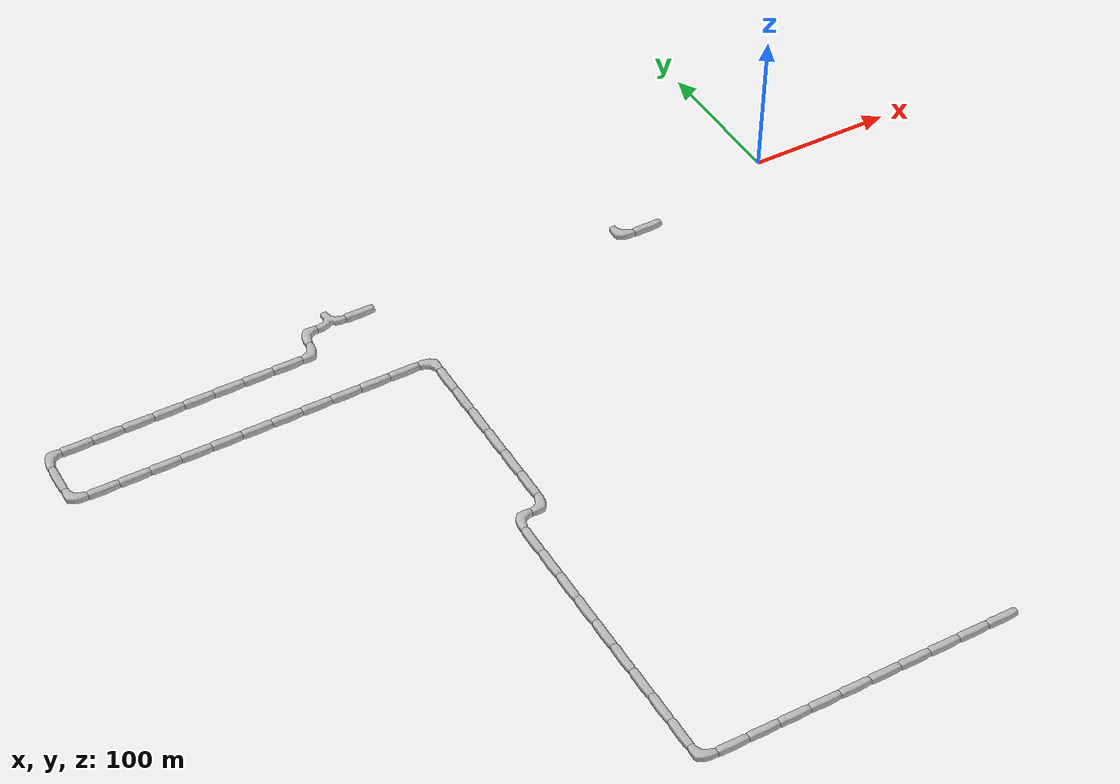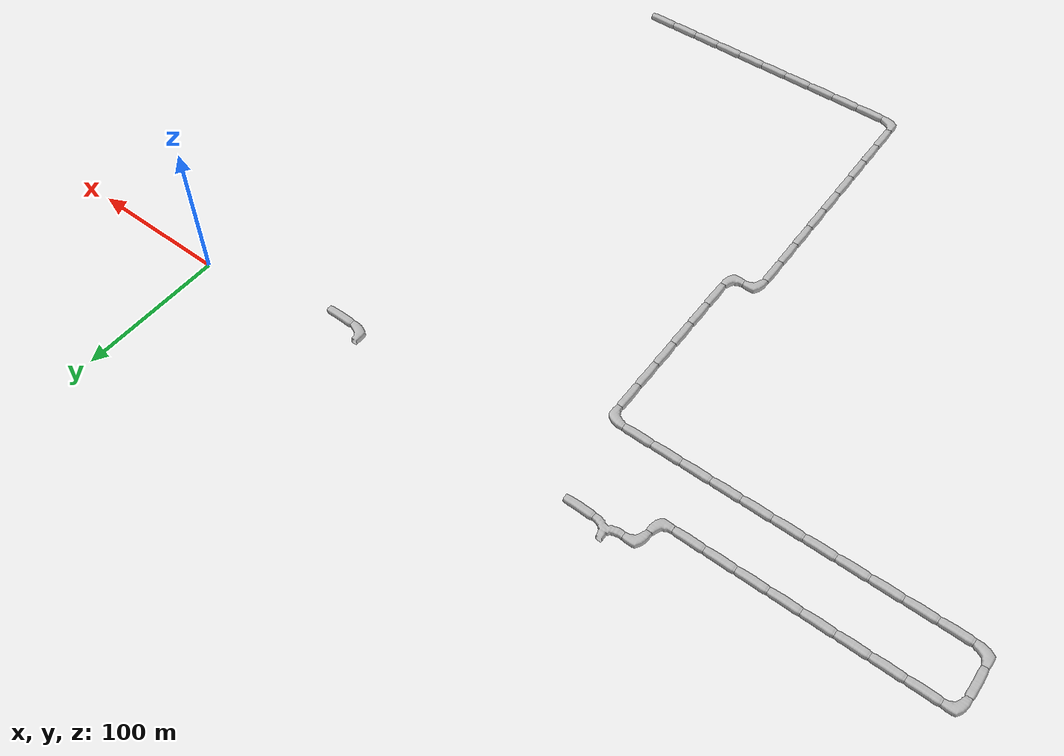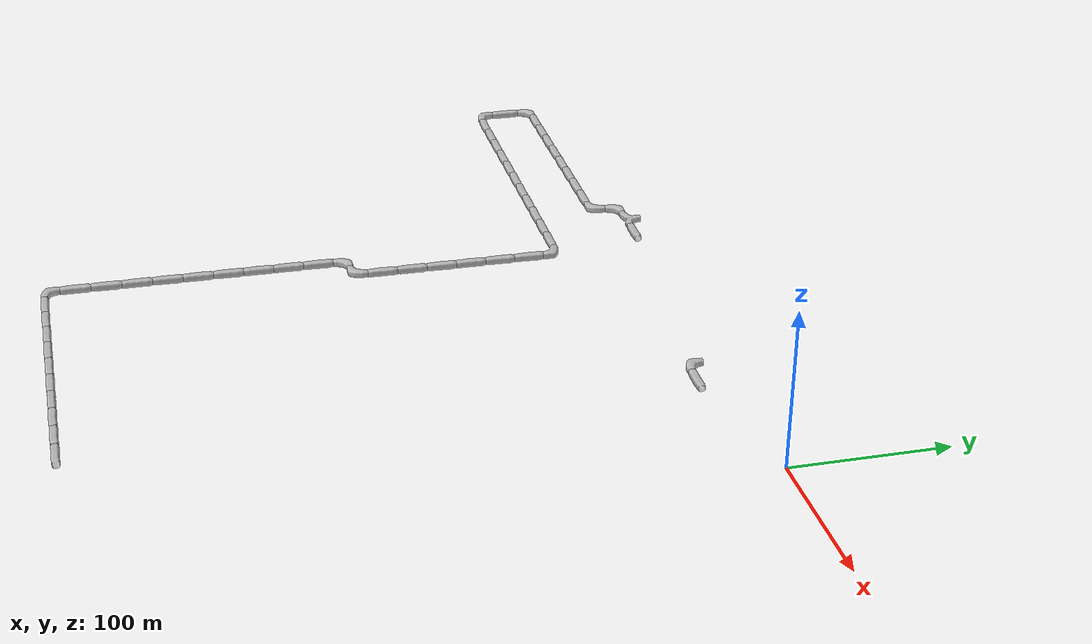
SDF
<sdf version="1.6">
 <world name="cave_32000_32">
  <include>
   <static>true</static>
   <name>cave_-5_-1</name>
   <pose>-100 -20 0 0 0 1.5707963267948966</pose>
   <uri>model://cave_straight_20m</uri>
  </include>
  <include>
   <static>true</static>
   <name>cave_-6_-1</name>
   <pose>-120 -20 0 0 0 0.0</pose>
   <uri>model://cave_L_20m</uri>
  </include>
  <include>
   <static>true</static>
   <name>cave_-15_0</name>
   <pose>-300 0 0 0 0 1.5707963267948966</pose>
   <uri>model://cave_straight_20m</uri>
  </include>
  <include>
   <static>true</static>
   <name>cave_-16_0</name>
   <pose>-320 0 0 0 0 0.0</pose>
   <uri>model://cave_3way_20m</uri>
  </include>
  <include>
   <static>true</static>
   <name>cave_-17_0</name>
   <pose>-340 0 0 0 0 -1.5707963267948966</pose>
   <uri>model://cave_L_20m</uri>
  </include>
  <include>
   <static>true</static>
   <name>cave_-17_-1</name>
   <pose>-340 -20 0 0 0 1.5707963267948966</pose>
   <uri>model://cave_L_20m</uri>
  </include>
  <include>
   <static>true</static>
   <name>cave_-18_-1</name>
   <pose>-360 -20 0 0 0 1.5707963267948966</pose>
   <uri>model://cave_straight_20m</uri>
  </include>
  <include>
   <static>true</static>
   <name>cave_-19_-1</name>
   <pose>-380 -20 0 0 0 1.5707963267948966</pose>
   <uri>model://cave_straight_20m</uri>
  </include>
  <include>
   <static>true</static>
   <name>cave_-20_-1</name>
   <pose>-400 -20 0 0 0 1.5707963267948966</pose>
   <uri>model://cave_straight_20m</uri>
  </include>
  <include>
   <static>true</static>
   <name>cave_-21_-1</name>
   <pose>-420 -20 0 0 0 1.5707963267948966</pose>
   <uri>model://cave_straight_20m</uri>
  </include>
  <include>
   <static>true</static>
   <name>cave_-22_-1</name>
   <pose>-440 -20 0 0 0 1.5707963267948966</pose>
   <uri>model://cave_straight_20m</uri>
  </include>
  <include>
   <static>true</static>
   <name>cave_-23_-1</name>
   <pose>-460 -20 0 0 0 1.5707963267948966</pose>
   <uri>model://cave_straight_20m</uri>
  </include>
  <include>
   <static>true</static>
   <name>cave_-24_-1</name>
   <pose>-480 -20 0 0 0 1.5707963267948966</pose>
   <uri>model://cave_straight_20m</uri>
  </include>
  <include>
   <static>true</static>
   <name>cave_-25_-1</name>
   <pose>-500 -20 0 0 0 1.5707963267948966</pose>
   <uri>model://cave_straight_20m</uri>
  </include>
  <include>
   <static>true</static>
   <name>cave_-26_-1</name>
   <pose>-520 -20 0 0 0 -1.5707963267948966</pose>
   <uri>model://cave_L_20m</uri>
  </include>
  <include>
   <static>true</static>
   <name>cave_-26_-2</name>
   <pose>-520 -40 0 0 0 0.0</pose>
   <uri>model://cave_straight_20m</uri>
  </include>
  <include>
   <static>true</static>
   <name>cave_-26_-3</name>
   <pose>-520 -60 0 0 0 0.0</pose>
   <uri>model://cave_L_20m</uri>
  </include>
  <include>
   <static>true</static>
   <name>cave_-25_-3</name>
   <pose>-500 -60 0 0 0 1.5707963267948966</pose>
   <uri>model://cave_straight_20m</uri>
  </include>
  <include>
   <static>true</static>
   <name>cave_-24_-3</name>
   <pose>-480 -60 0 0 0 1.5707963267948966</pose>
   <uri>model://cave_straight_20m</uri>
  </include>
  <include>
   <static>true</static>
   <name>cave_-23_-3</name>
   <pose>-460 -60 0 0 0 1.5707963267948966</pose>
   <uri>model://cave_straight_20m</uri>
  </include>
  <include>
   <static>true</static>
   <name>cave_-22_-3</name>
   <pose>-440 -60 0 0 0 1.5707963267948966</pose>
   <uri>model://cave_straight_20m</uri>
  </include>
  <include>
   <static>true</static>
   <name>cave_-21_-3</name>
   <pose>-420 -60 0 0 0 1.5707963267948966</pose>
   <uri>model://cave_straight_20m</uri>
  </include>
  <include>
   <static>true</static>
   <name>cave_-20_-3</name>
   <pose>-400 -60 0 0 0 1.5707963267948966</pose>
   <uri>model://cave_straight_20m</uri>
  </include>
  <include>
   <static>true</static>
   <name>cave_-19_-3</name>
   <pose>-380 -60 0 0 0 1.5707963267948966</pose>
   <uri>model://cave_straight_20m</uri>
  </include>
  <include>
   <static>true</static>
   <name>cave_-18_-3</name>
   <pose>-360 -60 0 0 0 1.5707963267948966</pose>
   <uri>model://cave_straight_20m</uri>
  </include>
  <include>
   <static>true</static>
   <name>cave_-17_-3</name>
   <pose>-340 -60 0 0 0 1.5707963267948966</pose>
   <uri>model://cave_straight_20m</uri>
  </include>
  <include>
   <static>true</static>
   <name>cave_-16_-3</name>
   <pose>-320 -60 0 0 0 1.5707963267948966</pose>
   <uri>model://cave_straight_20m</uri>
  </include>
  <include>
   <static>true</static>
   <name>cave_-15_-3</name>
   <pose>-300 -60 0 0 0 1.5707963267948966</pose>
   <uri>model://cave_straight_20m</uri>
  </include>
  <include>
   <static>true</static>
   <name>cave_-14_-3</name>
   <pose>-280 -60 0 0 0 3.141592653589793</pose>
   <uri>model://cave_L_20m</uri>
  </include>
  <include>
   <static>true</static>
   <name>cave_-14_-4</name>
   <pose>-280 -80 0 0 0 0.0</pose>
   <uri>model://cave_straight_20m</uri>
  </include>
  <include>
   <static>true</static>
   <name>cave_-14_-5</name>
   <pose>-280 -100 0 0 0 0.0</pose>
   <uri>model://cave_straight_20m</uri>
  </include>
  <include>
   <static>true</static>
   <name>cave_-14_-6</name>
   <pose>-280 -120 0 0 0 0.0</pose>
   <uri>model://cave_straight_20m</uri>
  </include>
  <include>
   <static>true</static>
   <name>cave_-14_-7</name>
   <pose>-280 -140 0 0 0 0.0</pose>
   <uri>model://cave_straight_20m</uri>
  </include>
  <include>
   <static>true</static>
   <name>cave_-14_-8</name>
   <pose>-280 -160 0 0 0 0.0</pose>
   <uri>model://cave_straight_20m</uri>
  </include>
  <include>
   <static>true</static>
   <name>cave_-14_-9</name>
   <pose>-280 -180 0 0 0 0.0</pose>
   <uri>model://cave_straight_20m</uri>
  </include>
  <include>
   <static>true</static>
   <name>cave_-14_-10</name>
   <pose>-280 -200 0 0 0 1.5707963267948966</pose>
   <uri>model://cave_L_20m</uri>
  </include>
  <include>
   <static>true</static>
   <name>cave_-15_-10</name>
   <pose>-300 -200 0 0 0 -1.5707963267948966</pose>
   <uri>model://cave_L_20m</uri>
  </include>
  <include>
   <static>true</static>
   <name>cave_-15_-11</name>
   <pose>-300 -220 0 0 0 0.0</pose>
   <uri>model://cave_straight_20m</uri>
  </include>
  <include>
   <static>true</static>
   <name>cave_-15_-12</name>
   <pose>-300 -240 0 0 0 0.0</pose>
   <uri>model://cave_straight_20m</uri>
  </include>
  <include>
   <static>true</static>
   <name>cave_-15_-13</name>
   <pose>-300 -260 0 0 0 0.0</pose>
   <uri>model://cave_straight_20m</uri>
  </include>
  <include>
   <static>true</static>
   <name>cave_-15_-14</name>
   <pose>-300 -280 0 0 0 0.0</pose>
   <uri>model://cave_straight_20m</uri>
  </include>
  <include>
   <static>true</static>
   <name>cave_-15_-15</name>
   <pose>-300 -300 0 0 0 0.0</pose>
   <uri>model://cave_straight_20m</uri>
  </include>
  <include>
   <static>true</static>
   <name>cave_-15_-16</name>
   <pose>-300 -320 0 0 0 0.0</pose>
   <uri>model://cave_straight_20m</uri>
  </include>
  <include>
   <static>true</static>
   <name>cave_-15_-17</name>
   <pose>-300 -340 0 0 0 0.0</pose>
   <uri>model://cave_straight_20m</uri>
  </include>
  <include>
   <static>true</static>
   <name>cave_-15_-18</name>
   <pose>-300 -360 0 0 0 0.0</pose>
   <uri>model://cave_straight_20m</uri>
  </include>
  <include>
   <static>true</static>
   <name>cave_-15_-19</name>
   <pose>-300 -380 0 0 0 0.0</pose>
   <uri>model://cave_straight_20m</uri>
  </include>
  <include>
   <static>true</static>
   <name>cave_-15_-20</name>
   <pose>-300 -400 0 0 0 0.0</pose>
   <uri>model://cave_L_20m</uri>
  </include>
  <include>
   <static>true</static>
   <name>cave_-14_-20</name>
   <pose>-280 -400 0 0 0 1.5707963267948966</pose>
   <uri>model://cave_straight_20m</uri>
  </include>
  <include>
   <static>true</static>
   <name>cave_-13_-20</name>
   <pose>-260 -400 0 0 0 1.5707963267948966</pose>
   <uri>model://cave_straight_20m</uri>
  </include>
  <include>
   <static>true</static>
   <name>cave_-12_-20</name>
   <pose>-240 -400 0 0 0 1.5707963267948966</pose>
   <uri>model://cave_straight_20m</uri>
  </include>
  <include>
   <static>true</static>
   <name>cave_-11_-20</name>
   <pose>-220 -400 0 0 0 1.5707963267948966</pose>
   <uri>model://cave_straight_20m</uri>
  </include>
  <include>
   <static>true</static>
   <name>cave_-10_-20</name>
   <pose>-200 -400 0 0 0 1.5707963267948966</pose>
   <uri>model://cave_straight_20m</uri>
  </include>
  <include>
   <static>true</static>
   <name>cave_-9_-20</name>
   <pose>-180 -400 0 0 0 1.5707963267948966</pose>
   <uri>model://cave_straight_20m</uri>
  </include>
  <include>
   <static>true</static>
   <name>cave_-8_-20</name>
   <pose>-160 -400 0 0 0 1.5707963267948966</pose>
   <uri>model://cave_straight_20m</uri>
  </include>
  <include>
   <static>true</static>
   <name>cave_-7_-20</name>
   <pose>-140 -400 0 0 0 1.5707963267948966</pose>
   <uri>model://cave_straight_20m</uri>
  </include>
  <include>
   <static>true</static>
   <name>cave_-6_-20</name>
   <pose>-120 -400 0 0 0 1.5707963267948966</pose>
   <uri>model://cave_straight_20m</uri>
  </include>
  <include>
   <static>true</static>
   <name>cave_-5_-20</name>
   <pose>-100 -400 0 0 0 1.5707963267948966</pose>
   <uri>model://cave_straight_20m</uri>
  </include>
 </world>
</sdf>
